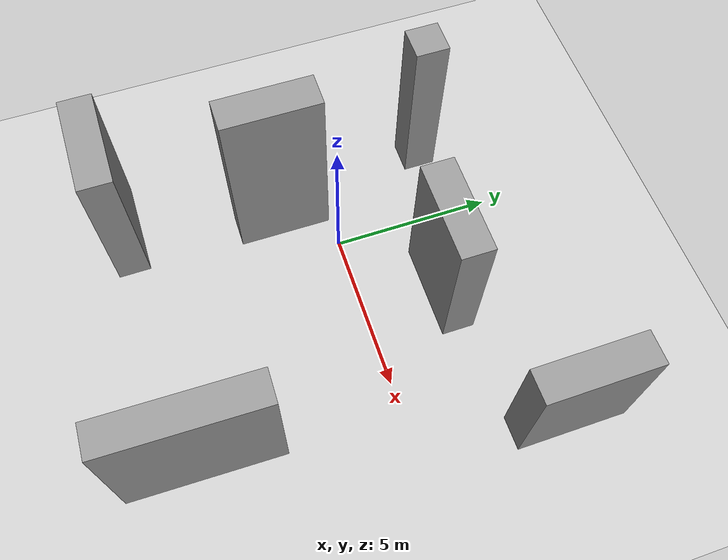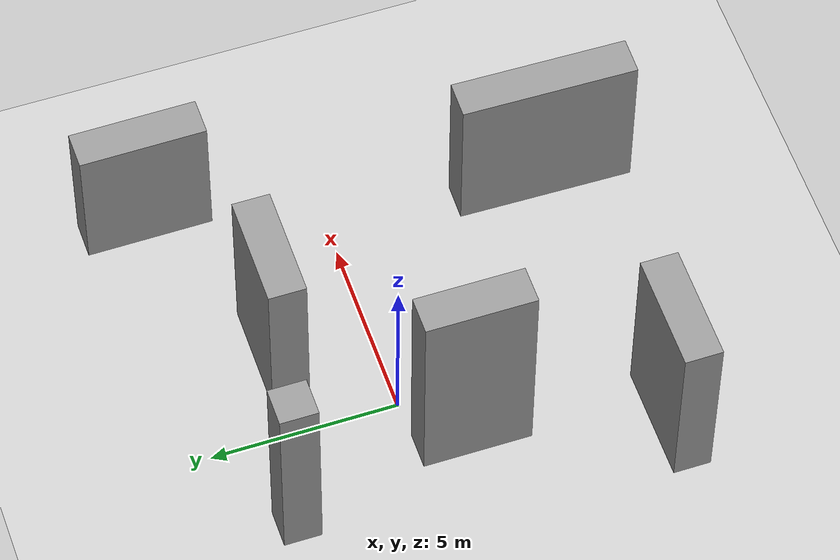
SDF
<sdf version="1.7">
 <world name="default">
  <light name="sun" type="directional">
   <pose>0 0 10 0 -0 0</pose>
   <diffuse>0.8 0.8 0.8 1</diffuse>
   <specular>0.2 0.2 0.2 1</specular>
   <attenuation>
    <range>1000</range>
    <constant>0.9</constant>
    <linear>0.01</linear>
    <quadratic>0.001</quadratic>
   </attenuation>
   <direction>-0.5 0.1 -0.9</direction>
   <spot><inner_angle>0</inner_angle><outer_angle>0</outer_angle><falloff>0</falloff></spot>
  </light>
  <model name="ground_plane">
   <static>1</static>
   <link name="link">
    <collision name="collision">
     <geometry><plane><normal>0 0 1</normal><size>100 100</size></plane></geometry>
     <surface><friction><ode><mu>100</mu><mu2>50</mu2></ode></friction></surface>
    </collision>
    <visual name="visual">
     <cast_shadows>0</cast_shadows>
     <geometry><plane><normal>0 0 1</normal><size>100 100</size></plane></geometry>
     <material>
      <script><uri>file://media/materials/scripts/gazebo.material</uri><name>Gazebo/Grey</name></script>
     </material>
    </visual>
   </link>
  </model>
  <gravity>0 0 -9.8</gravity>
  <magnetic_field>6e-06 2.3e-05 -4.2e-05</magnetic_field>
  <atmosphere type="adiabatic"/>
  <physics name="default_physics" default="0" type="ode">
   <max_step_size>0.001</max_step_size>
   <real_time_factor>1</real_time_factor>
   <real_time_update_rate>1000</real_time_update_rate>
  </physics>
  <scene><ambient>0.4 0.4 0.4 1</ambient><background>0.7 0.7 0.7 1</background><shadows>1</shadows></scene>
  <spherical_coordinates>
   <surface_model>EARTH_WGS84</surface_model>
   <latitude_deg>0</latitude_deg>
   <longitude_deg>0</longitude_deg>
   <elevation>0</elevation>
   <heading_deg>0</heading_deg>
  </spherical_coordinates>
  <model name="unit_box">
   <pose>2.4963 2.54089 2.44205 -0 1e-06 -0.001277</pose>
   <link name="link">
    <inertial>
     <mass>1</mass>
     <inertia>
      <ixx>0.166667</ixx>
      <ixy>0</ixy>
      <ixz>0</ixz>
      <iyy>0.166667</iyy>
      <iyz>0</iyz>
      <izz>0.166667</izz>
     </inertia>
    </inertial>
    <collision name="collision"><geometry><box><size>3.01747 1 4.8841</size></box></geometry></collision>
    <visual name="visual">
     <geometry><box><size>3.01747 1 4.8841</size></box></geometry>
     <material>
      <script><name>Gazebo/Grey</name><uri>file://media/materials/scripts/gazebo.material</uri></script>
     </material>
    </visual>
   </link>
  </model>
  <model name="unit_box_clone">
   <pose>5.52452 -5.82948 2.23792 1e-06 0 -0.016845</pose>
   <link name="link">
    <inertial>
     <mass>1</mass>
     <inertia>
      <ixx>0.166667</ixx>
      <ixy>0</ixy>
      <ixz>0</ixz>
      <iyy>0.166667</iyy>
      <iyz>0</iyz>
      <izz>0.166667</izz>
     </inertia>
    </inertial>
    <collision name="collision"><geometry><box><size>1 4.72382 4.47585</size></box></geometry></collision>
    <visual name="visual">
     <geometry><box><size>1 4.72382 4.47585</size></box></geometry>
     <material>
      <script><name>Gazebo/Grey</name><uri>file://media/materials/scripts/gazebo.material</uri></script>
     </material>
    </visual>
   </link>
  </model>
  <model name="unit_box_clone_0">
   <pose>7.50902 4.47925 1.99253 1e-06 -0 0.006111</pose>
   <link name="link">
    <inertial>
     <mass>1</mass>
     <inertia>
      <ixx>0.166667</ixx>
      <ixy>0</ixy>
      <ixz>0</ixz>
      <iyy>0.166667</iyy>
      <iyz>0</iyz>
      <izz>0.166667</izz>
     </inertia>
    </inertial>
    <collision name="collision"><geometry><box><size>1 3.38677 3.98506</size></box></geometry></collision>
    <visual name="visual">
     <geometry><box><size>1 3.38677 3.98506</size></box></geometry>
     <material>
      <script><name>Gazebo/Grey</name><uri>file://media/materials/scripts/gazebo.material</uri></script>
     </material>
    </visual>
   </link>
  </model>
  <model name="unit_box_clone_1">
   <pose>-1.44928 -1.48366 3.06746 -1e-06 -0 -0.001747</pose>
   <link name="link">
    <inertial>
     <mass>1</mass>
     <inertia>
      <ixx>0.166667</ixx>
      <ixy>0</ixy>
      <ixz>0</ixz>
      <iyy>0.166667</iyy>
      <iyz>0</iyz>
      <izz>0.166667</izz>
     </inertia>
    </inertial>
    <collision name="collision"><geometry><box><size>1 2.90263 6.13493</size></box></geometry></collision>
    <visual name="visual">
     <geometry><box><size>1 2.90263 6.13493</size></box></geometry>
     <material>
      <script><name>Gazebo/Grey</name><uri>file://media/materials/scripts/gazebo.material</uri></script>
     </material>
    </visual>
   </link>
  </model>
  <model name="unit_box_clone_2">
   <pose>-2.52652 3.52211 2.82738 -0 -0 -0.000724</pose>
   <link name="link">
    <inertial>
     <mass>1</mass>
     <inertia>
      <ixx>0.166667</ixx>
      <ixy>0</ixy>
      <ixz>0</ixz>
      <iyy>0.166667</iyy>
      <iyz>0</iyz>
      <izz>0.166667</izz>
     </inertia>
    </inertial>
    <collision name="collision"><geometry><box><size>1 1 5.65476</size></box></geometry></collision>
    <visual name="visual">
     <geometry><box><size>1 1 5.65476</size></box></geometry>
     <material>
      <script><name>Gazebo/Grey</name><uri>file://media/materials/scripts/gazebo.material</uri></script>
     </material>
    </visual>
   </link>
  </model>
  <model name="unit_box_clone_3">
   <pose>-2.58582 -6.45078 2.52891 0 -0 0.001094</pose>
   <link name="link">
    <inertial>
     <mass>1</mass>
     <inertia>
      <ixx>0.166667</ixx>
      <ixy>0</ixy>
      <ixz>0</ixz>
      <iyy>0.166667</iyy>
      <iyz>0</iyz>
      <izz>0.166667</izz>
     </inertia>
    </inertial>
    <collision name="collision"><geometry><box><size>3.11495 1 5.05782</size></box></geometry></collision>
    <visual name="visual">
     <geometry><box><size>3.11495 1 5.05782</size></box></geometry>
     <material>
      <script><name>Gazebo/Grey</name><uri>file://media/materials/scripts/gazebo.material</uri></script>
     </material>
    </visual>
   </link>
  </model>
 </world>
</sdf>
